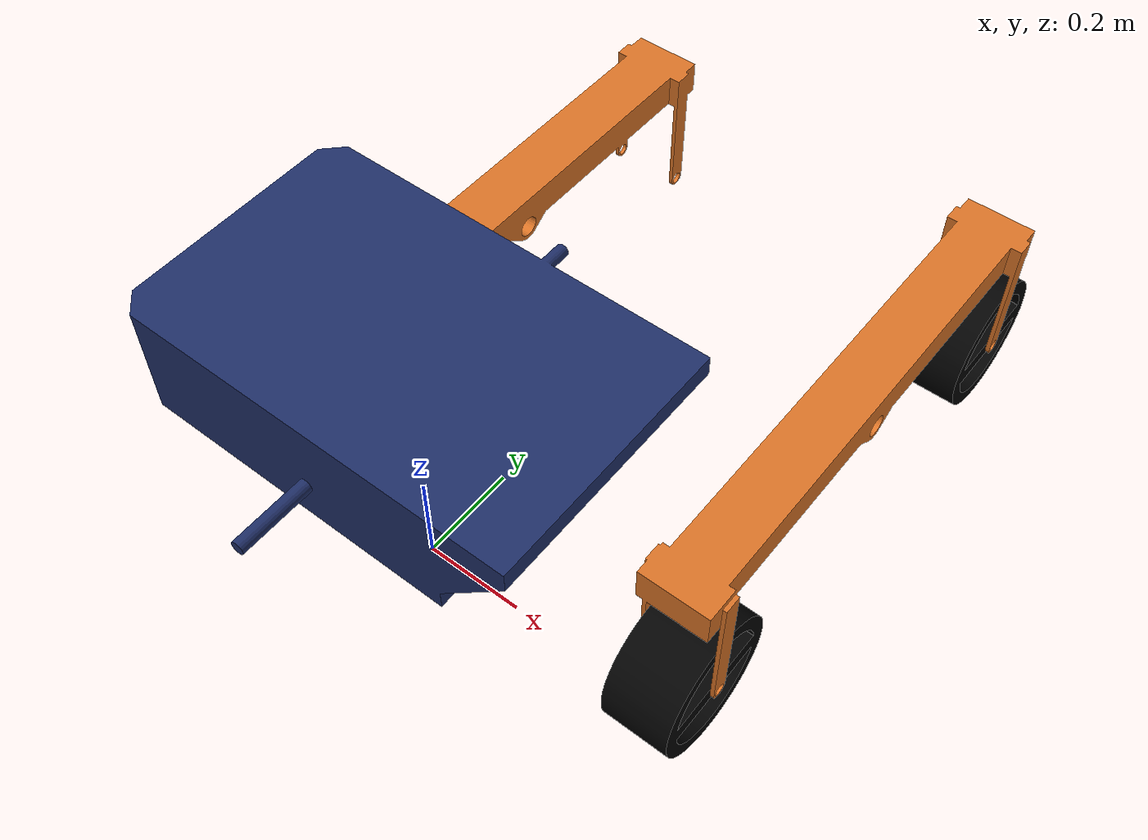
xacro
<?xml version="1.0" ?>
<robot name="Final" xmlns:xacro="http://www.ros.org/wiki/xacro">

<xacro:include filename="$(find rover_description)/urdf/materials.xacro" />
<xacro:include filename="$(find rover_description)/urdf/Final.trans" />
<xacro:include filename="$(find rover_description)/urdf/Final.gazebo" />
<xacro:include filename="$(find rover_description)/urdf/sensors/lidar3d.xacro" />

<xacro:arg name="is_ignition" default="true"/>
<xacro:include filename="$(find rover_description)/urdf/rover_control.xacro" />

<link name="base_footprint"/>
<joint name="base_footprint_joint" type="fixed">
  <parent link="base_footprint"/>
  <child link="base_link"/>
  <origin xyz="0 0 0.393" rpy="0 0 0"/>
</joint>

<link name="base_link">
  <inertial>
    <origin xyz="0.23371470080552523 0.3424215459495483 0.11792924666461195" rpy="0 0 0"/>
    <mass value="360.0"/>
    <inertia ixx="28.457355" iyy="14.276737" izz="34.968035" ixy="0.085086" iyz="0.387247" ixz="-0.119086"/>
  </inertial>
  <visual>
    <origin xyz="0 0 0" rpy="0 0 0"/>
    <geometry>
      <mesh filename="package://rover_description/meshes/base_link.stl" scale="0.001 0.001 0.001"/>
    </geometry>
    <material name="nice_navy">
        <color rgba="0.12 0.18 0.4 1"/>
    </material>
  </visual>
  <collision>
    <origin xyz="0 0 0" rpy="0 0 0"/>
    <geometry>
      <mesh filename="package://rover_description/meshes/base_link.stl" scale="0.001 0.001 0.001"/>
    </geometry>
  </collision>
</link>

<link name="Wheel2_1">
  <inertial>
    <origin xyz="0.060000000000048695 9.626243984289795e-07 0.00010157518963996304" rpy="0 0 0"/>
    <mass value="35.0"/>
    <inertia ixx="0.234154" iyy="0.134117" izz="0.153907" ixy="-0.0" iyz="8e-06" ixz="0.0"/>
  </inertial>
  <visual>
    <origin xyz="0.1758 0.049434 0.072191" rpy="0 0 0"/>
    <geometry>
      <mesh filename="package://rover_description/meshes/Wheel2_1.stl" scale="0.001 0.001 0.001"/>
    </geometry>
    <material name="black">
        <color rgba="0.01 0.01 0.01 1"/>
    </material>
  </visual>
  <collision>
    <origin xyz="0.1758 0.049434 0.072191" rpy="0 0 0"/>
    <geometry>
      <mesh filename="package://rover_description/meshes/Wheel2_1.stl" scale="0.001 0.001 0.001"/>
    </geometry>
  </collision>
</link>

<link name="Wheel1_1">
  <inertial>
    <origin xyz="0.05999999999997653 1.1249441103089453e-06 0.00010186480729457159" rpy="0 0 0"/>
    <mass value="35.0"/>
    <inertia ixx="0.234154" iyy="0.134117" izz="0.153907" ixy="-0.0" iyz="8e-06" ixz="0.0"/>
  </inertial>
  <visual>
    <origin xyz="0.1758 -0.800498 0.083039" rpy="0 0 0"/>
    <geometry>
      <mesh filename="package://rover_description/meshes/Wheel1_1.stl" scale="0.001 0.001 0.001"/>
    </geometry>
    <material name="black">
        <color rgba="0.01 0.01 0.01 1"/>
    </material>
  </visual>
  <collision>
    <origin xyz="0.1758 -0.800498 0.083039" rpy="0 0 0"/>
    <geometry>
      <mesh filename="package://rover_description/meshes/Wheel1_1.stl" scale="0.001 0.001 0.001"/>
    </geometry>
  </collision>
</link>

<link name="Wheel2__1__2">
  <inertial>
    <origin xyz="-0.059999999999952314 1.1891813821787722e-06 0.00010132422446335054" rpy="0 0 0"/>
    <mass value="35.0"/>
    <inertia ixx="0.234154" iyy="0.134117" izz="0.153907" ixy="0.0" iyz="8e-06" ixz="-0.0"/>
  </inertial>
  <visual>
    <origin xyz="-0.6425 0.049502 0.082708" rpy="0 0 0"/>
    <geometry>
      <mesh filename="package://rover_description/meshes/Wheel2__1__2.stl" scale="0.001 0.001 0.001"/>
    </geometry>
    <material name="black">
        <color rgba="0.01 0.01 0.01 1"/>
    </material>
  </visual>
  <collision>
    <origin xyz="-0.6425 0.049502 0.082708" rpy="0 0 0"/>
    <geometry>
      <mesh filename="package://rover_description/meshes/Wheel2__1__2.stl" scale="0.001 0.001 0.001"/>
    </geometry>
  </collision>
</link>

<link name="Wheel2__1__1">
  <inertial>
    <origin xyz="-0.7537999999999477 7.512494407269088e-05 0.00026586480728614525" rpy="0 0 0"/>
    <mass value="35.0"/>
    <inertia ixx="0.234154" iyy="0.134117" izz="0.153907" ixy="0.0" iyz="8e-06" ixz="-0.0"/>
  </inertial>
  <visual>
    <origin xyz="-1.3363 -0.800424 0.083203" rpy="0 0 0"/>
    <geometry>
      <mesh filename="package://rover_description/meshes/Wheel2__1__1.stl" scale="0.001 0.001 0.001"/>
    </geometry>
    <material name="black">
        <color rgba="0.01 0.01 0.01 1"/>
    </material>
  </visual>
  <collision>
    <origin xyz="-1.3363 -0.800424 0.083203" rpy="0 0 0"/>
    <geometry>
      <mesh filename="package://rover_description/meshes/Wheel2__1__1.stl" scale="0.001 0.001 0.001"/>
    </geometry>
  </collision>
</link>

<link name="Side1_1">
  <inertial>
    <origin xyz="-0.04997257661493937 0.0004804691908492642 0.02785086678998311" rpy="0 0 0"/>
    <mass value="50.0"/>
    <inertia ixx="3.901891" iyy="0.088961" izz="3.911318" ixy="-0.000394" iyz="0.044008" ixz="4.1e-05"/>
  </inertial>
  <visual>
    <origin xyz="-0.63 -0.37785 -0.1081" rpy="0 0 0"/>
    <geometry>
      <mesh filename="package://rover_description/meshes/Side1_1.stl" scale="0.001 0.001 0.001"/>
    </geometry>
    <material name="soft_orange">
        <color rgba="0.85 0.45 0.15 1"/>
    </material>
  </visual>
  <collision>
    <origin xyz="-0.63 -0.37785 -0.1081" rpy="0 0 0"/>
    <geometry>
      <mesh filename="package://rover_description/meshes/Side1_1.stl" scale="0.001 0.001 0.001"/>
    </geometry>
  </collision>
</link>

<link name="Side2_1">
  <inertial>
    <origin xyz="0.050023043717073556 0.00048164194190997156 0.028033001206298203" rpy="0 0 0"/>
    <mass value="50.0"/>
    <inertia ixx="3.900293" iyy="0.087383" izz="3.911242" ixy="-0.000484" iyz="0.047745" ixz="2.8e-05"/>
  </inertial>
  <visual>
    <origin xyz="0.1638 -0.37785 -0.1081" rpy="0 0 0"/>
    <geometry>
      <mesh filename="package://rover_description/meshes/Side2_1.stl" scale="0.001 0.001 0.001"/>
    </geometry>
    <material name="soft_orange">
        <color rgba="0.85 0.45 0.15 1"/>
    </material>
  </visual>
  <collision>
    <origin xyz="0.1638 -0.37785 -0.1081" rpy="0 0 0"/>
    <geometry>
      <mesh filename="package://rover_description/meshes/Side2_1.stl" scale="0.001 0.001 0.001"/>
    </geometry>
  </collision>
</link>

<joint name="Revolute 14" type="continuous">
  <origin xyz="-0.012 -0.427284 -0.180291" rpy="0 0 0"/>
  <parent link="Side2_1"/>
  <child link="Wheel2_1"/>
  <axis xyz="-1.0 0.0 -0.0"/>
</joint>

<joint name="Revolute 15" type="continuous">
  <origin xyz="-0.012 0.422648 -0.191139" rpy="0 0 0"/>
  <parent link="Side2_1"/>
  <child link="Wheel1_1"/>
  <axis xyz="-1.0 0.0 -0.0"/>
</joint>

<joint name="Revolute 16" type="continuous">
  <origin xyz="0.0125 -0.427352 -0.190808" rpy="0 0 0"/>
  <parent link="Side1_1"/>
  <child link="Wheel2__1__2"/>
  <axis xyz="1.0 -0.0 0.0"/>
</joint>

<joint name="Revolute 17" type="continuous">
  <origin xyz="0.7063 0.422574 -0.191303" rpy="0 0 0"/>
  <parent link="Side1_1"/>
  <child link="Wheel2__1__1"/>
  <axis xyz="1.0 -0.0 0.0"/>
</joint>

<joint name="Revolute 18" type="fixed">
  <origin xyz="0.63 0.37785 0.1081" rpy="0 0 0"/>
  <parent link="base_link"/>
  <child link="Side1_1"/>
  <axis xyz="1.0 -0.0 0.0"/>
</joint>

<joint name="Revolute 19" type="fixed">
  <origin xyz="-0.1638 0.37785 0.1081" rpy="0 0 0"/>
  <parent link="base_link"/>
  <child link="Side2_1"/>
  <axis xyz="-1.0 0.0 -0.0"/>
</joint>

</robot>

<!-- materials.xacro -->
<robot name="materials"
  xmlns:xacro="http://ros.org/wiki/xacro">
  <material name="black">
    <color rgba="0.1 0.1 0.1 1.0" />
  </material>

  <material name="blue">
    <color rgba="0.0 0.0 0.8 1.0" />
  </material>

  <material name="green">
    <color rgba="0.4 0.9 0.4 1.0" />
  </material>

  <material name="gray">
    <color rgba="0.7 0.7 0.7 1.0" />
  </material>

  <material name="darkgray">
    <color rgba="0.3 0.3 0.3 1.0" />
  </material>

  <material name="red">
    <color rgba="0.8 0.0 0.0 1.0" />
  </material>

  <material name="white">
    <color rgba="1.0 1.0 1.0 1.0" />
  </material>

  <material name="yellow">
    <color rgba="0.8 0.8 0.0 1.0" />
  </material>

</robot>

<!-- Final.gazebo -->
<robot name="Final" xmlns:xacro="http://www.ros.org/wiki/xacro" >

<xacro:property name="body_color" value="Gazebo/Silver" />

<gazebo>
  <plugin filename="ign_ros2_control-system"
          name="ign_ros2_control::IgnitionROS2ControlPlugin">
    <parameters>$(find rover_controller)/config/controller.yaml</parameters>
  </plugin>
</gazebo>

<gazebo reference="base_link">
  <material>${body_color}</material>
  <mu1>0.2</mu1>
  <mu2>0.2</mu2>
  <selfCollide>true</selfCollide>
  <gravity>true</gravity>
</gazebo>

<gazebo reference="Wheel2_1">
  <material>${body_color}</material>
  <mu1>0.2</mu1>
  <mu2>0.2</mu2>
  <selfCollide>true</selfCollide>
</gazebo>

<gazebo reference="Wheel1_1">
  <material>${body_color}</material>
  <mu1>0.2</mu1>
  <mu2>0.2</mu2>
  <selfCollide>true</selfCollide>
</gazebo>

<gazebo reference="Wheel2__1__2">
  <material>${body_color}</material>
  <mu1>0.2</mu1>
  <mu2>0.2</mu2>
  <selfCollide>true</selfCollide>
</gazebo>

<gazebo reference="Wheel2__1__1">
  <material>${body_color}</material>
  <mu1>0.2</mu1>
  <mu2>0.2</mu2>
  <selfCollide>true</selfCollide>
</gazebo>

<gazebo reference="Side1_1">
  <material>${body_color}</material>
  <mu1>0.2</mu1>
  <mu2>0.2</mu2>
  <selfCollide>true</selfCollide>
</gazebo>

<gazebo reference="Side2_1">
  <material>${body_color}</material>
  <mu1>0.2</mu1>
  <mu2>0.2</mu2>
  <selfCollide>true</selfCollide>
</gazebo>

</robot>
